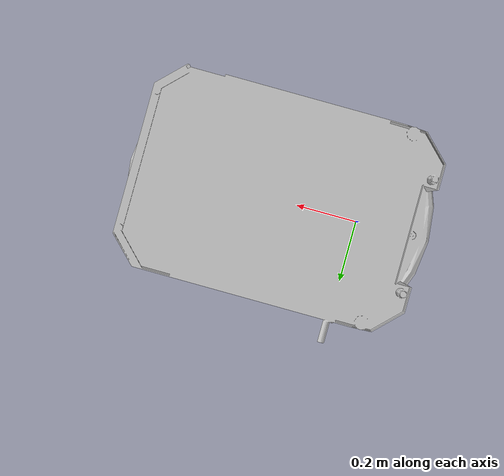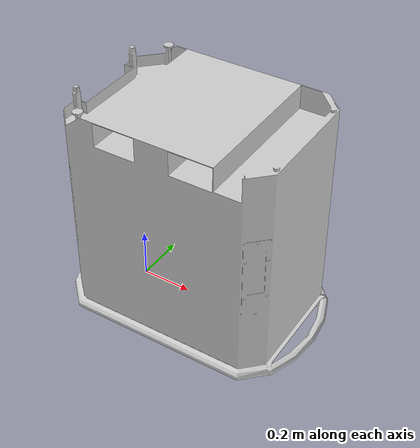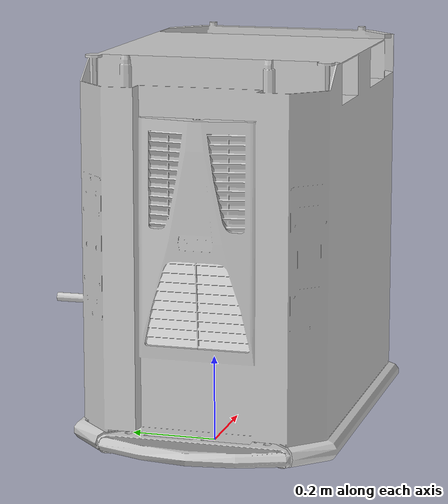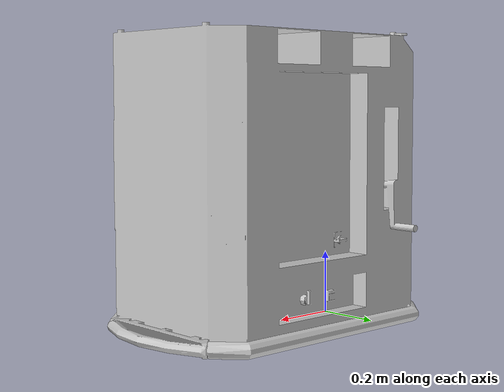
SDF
<?xml version="1.0"?>
<sdf version="1.6">
  <model name="flex_fellow_h800">
    <static>true</static>
    <link name="link">
      <visual name="visual">
        <geometry>
          <mesh>
            <uri>model://flex_fellow_h800/flex_fellow_h800.dae</uri>
            <scale>1 1 1</scale>
          </mesh>
        </geometry>
      </visual>
      <collision name="collision">
        <geometry>
          <mesh>
            <uri>model://flex_fellow_h800/flex_fellow_h800.stl</uri>
            <scale>1 1 1</scale>
          </mesh>
        </geometry>
      </collision>
    </link>
  </model>
</sdf>
